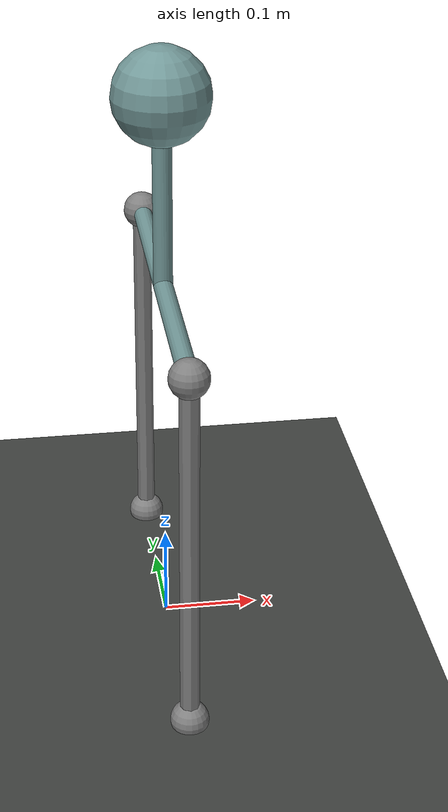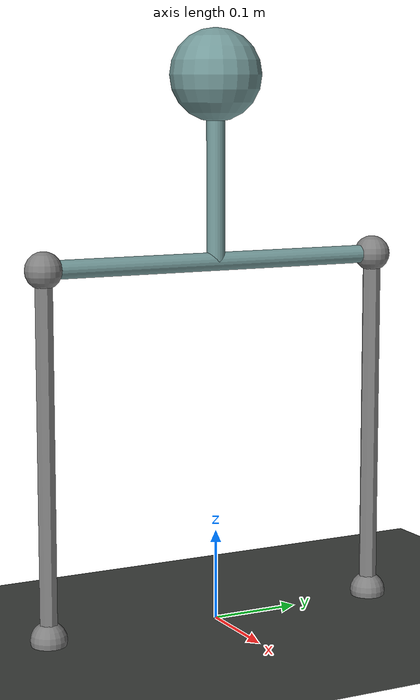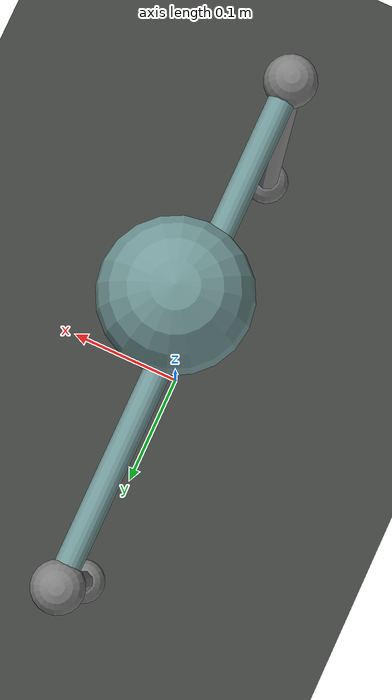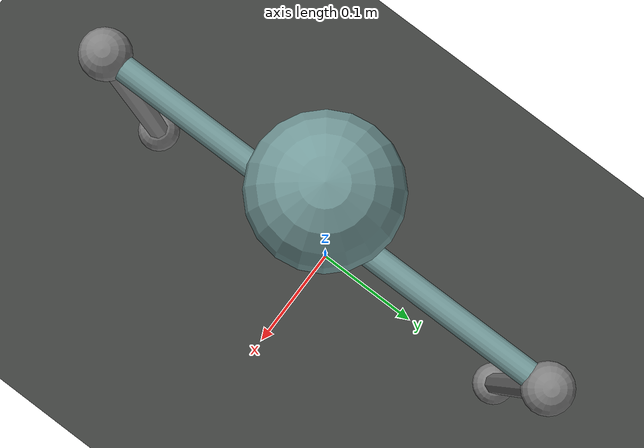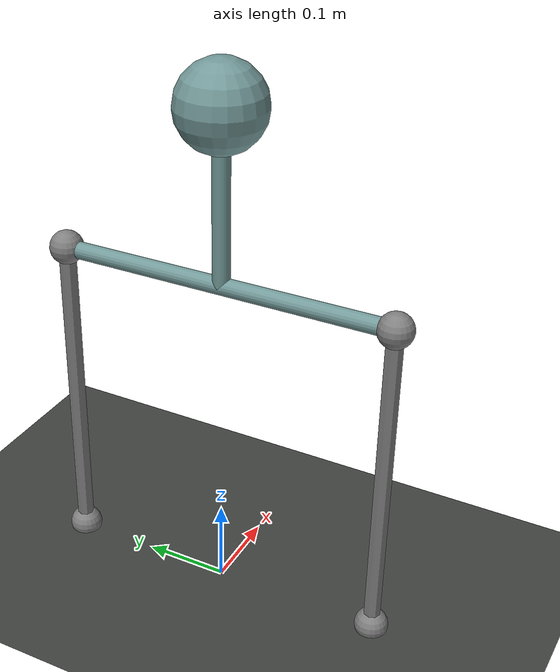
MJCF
<mujoco model="inverted pendulum">

	    <compiler angle="radian"/>

	        <option timestep="0.001" iterations="20">
		        <flag sensornoise="enable"/>
			    </option>

			        <default>
					    <geom  rgba="0.45 0.6 0.6 1"/>
					            <site type="sphere" size="0.02"/>
						        </default>
							    <worldbody>
								            <light directional="true" cutoff="4" exponent="20" diffuse="1 1 1" specular="0 0 0" pos=".9 .3 2.5" dir="-.9 -.3 -2.5 "/>

									            <!-- ======= Ground ======= -->
									            <geom name="ground" type="plane" pos="0 0 0" size="0.5 1 2" rgba=" .25 .26 .25 1"/>
										            <site name="rFix" pos="0 -.2 .005"/>
											            <site name="lFix" pos="0 .2 .005"/>

												            <!-- ======= Beam ======= -->
												            <body name="beam" pos="0 0 .5">
														                <!--density of the rod is ten times smaller than other objects (e.g. the ball) for a better point mass approximation-->
														                <geom name="rod" type="cylinder" pos="0 0 0.0" size=".01 .1" density="100"/>
																            <geom pos="0 0 -.1" type="capsule" size=".01 .2" euler="1.57 0 0"/>
																	                <joint name="pivot" pos="0 0 -0.1" axis="0 1 0" limited="false" damping=".05"/>
																			            <site name="rBeam" pos="0 -.2 -.1"/>
																				                <site name="lBeam" pos="0 .2 -.1"/>
																						            <body name="ballbody" pos="0 0 0.1">
																								                    <geom name="ballgeom" type="sphere" size=".05"/>
																										                </body>
																												        </body>
																													    </worldbody>

																													        <tendon>
																															        <spatial name="lThread" width="0.01">
																																	            <site site="lBeam"/>
																																		                <site site="lFix"/>
																																				        </spatial>

																																					        <spatial name="rThread"  width="0.01">
																																							        <site site="rBeam"/>
																																								        <site site="rFix"/>
																																									        </spatial>
																																										    </tendon>

																																										        <actuator>
																																												        <motor joint='pivot' name='motor' gear="1" forcelimited="true" forcerange="-10 10"/>
																																													    </actuator>

																																													        <sensor>
																																															        <jointpos name="encoder" joint="pivot" noise="0.001"/>
																																																    </sensor>
																																															    </mujoco>
